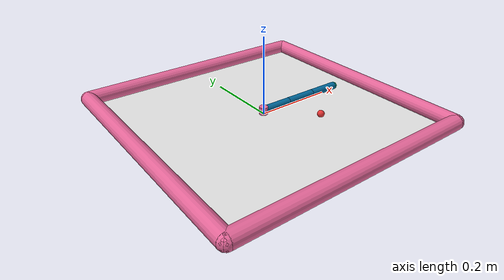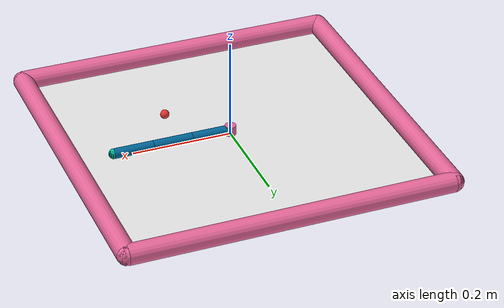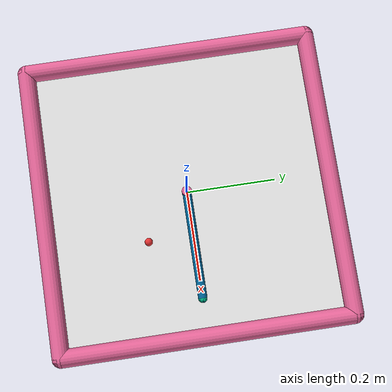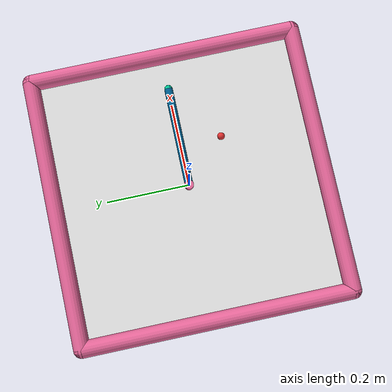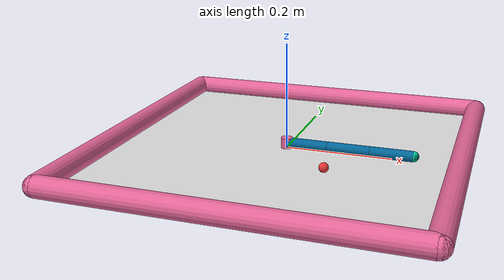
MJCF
<mujoco model="reacher_3j">
  <compiler angle="radian" inertiafromgeom="true"/>
  <default>
    <joint armature="1" damping="1" limited="true"/>
    <geom contype="1" conaffinity="1" friction="1 0.1 0.1" rgba="0.7 0.7 0 1" density="1000"/>
  </default>
  <option gravity="0 0 -9.81" integrator="RK4" timestep="0.02"/>
  <worldbody>
    <geom conaffinity="0" contype="0" name="ground" pos="0 0 0" rgba="0.9 0.9 0.9 1" size="0.324 0.324 10" type="plane"/>
    <geom conaffinity="0" contype="0" name="sideS" rgba="0.9 0.4 0.6 1" size="0.02" type="capsule" fromto="-0.324 -0.324 .01 0.324 -0.324 .01"/>
    <geom conaffinity="0" contype="0" name="sideE" rgba="0.9 0.4 0.6 1" size="0.02" type="capsule" fromto="0.324 -0.324 .01 0.324 0.324 .01"/>
    <geom conaffinity="0" contype="0" name="sideN" rgba="0.9 0.4 0.6 1" size="0.02" type="capsule" fromto="-0.324 0.324 .01 0.324 0.324 .01"/>
    <geom conaffinity="0" contype="0" name="sideW" rgba="0.9 0.4 0.6 1" size="0.02" type="capsule" fromto="-0.324 -0.324 .01 -0.324 0.324 .01"/>
    <geom conaffinity="0" contype="0" name="root" rgba="0.9 0.4 0.6 1" size=".011" type="cylinder" fromto="0 0 0 0 0 0.02"/>
    <body name="body0" pos="0 0 0.01">
      <geom name="link0" type="capsule" size="0.01" rgba="0.0 0.4 0.6 1" fromto="0 0 0 0.08 0 0"/>
      <joint name="joint0" type="hinge" pos="0 0 0" axis="0 0 1" limited="false"/>
      <body name="body1" pos="0.08 0 0">
      <geom name="link1" type="capsule" size="0.01" rgba="0.0 0.4 0.6 1" fromto="0 0 0 0.08 0 0"/>
      <joint name="joint1" type="hinge" pos="0 0 0" axis="0 0 1" limited="true" range="-2.5 2.5"/>
      <body name="body2" pos="0.08 0 0">
      <geom name="link2" type="capsule" size="0.01" rgba="0.0 0.4 0.6 1" fromto="0 0 0 0.08 0 0"/>
      <joint name="joint2" type="hinge" pos="0 0 0" axis="0 0 1" limited="true" range="-2.5 2.5"/>
      <body name="fingertip" pos="0.08 0 0">
        <geom name="fingertip_col" type="sphere" size="0.015" rgba="0 0 0 0" pos="0 0 0" contype="1" conaffinity="1" margin="0.002"/>
        <geom name="fingertip_vis" type="sphere" size="0.01" rgba="0.0 0.8 0.6 1" pos="0 0 0" contype="0" conaffinity="0"/>
      </body>
    </body>
    </body>
    </body>
    <body name="target" pos="0.1 -0.1 0.01">
      <joint name="target_x" type="slide" axis="1 0 0" limited="true" range="-0.216 0.216" ref="0.1" damping="0" armature="0" stiffness="0"/>
      <joint name="target_y" type="slide" axis="0 1 0" limited="true" range="-0.216 0.216" ref="-0.1" damping="0" armature="0" stiffness="0"/>
      <geom name="target" type="sphere" size="0.009" rgba="0.9 0.2 0.2 1" pos="0 0 0" contype="0" conaffinity="0"/>
    </body>
  </worldbody>
  <actuator>
    <motor joint="joint0" ctrllimited="true" ctrlrange="-1.0 1.0" gear="80.0"/>
    <motor joint="joint1" ctrllimited="true" ctrlrange="-1.0 1.0" gear="80.0"/>
    <motor joint="joint2" ctrllimited="true" ctrlrange="-1.0 1.0" gear="80.0"/>
  </actuator>
</mujoco>
